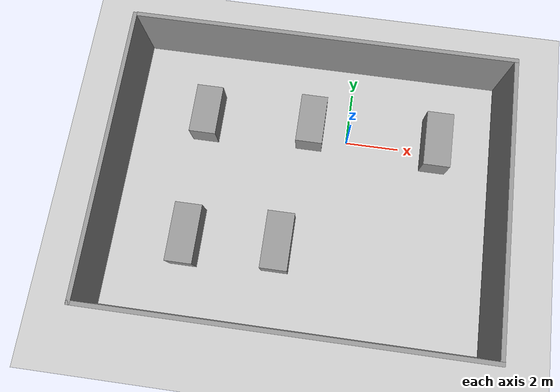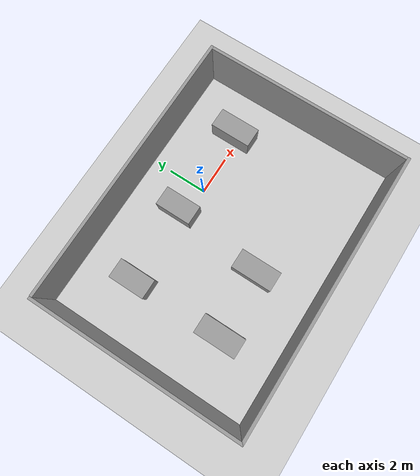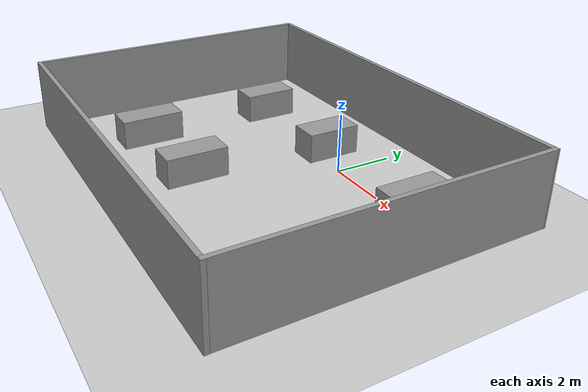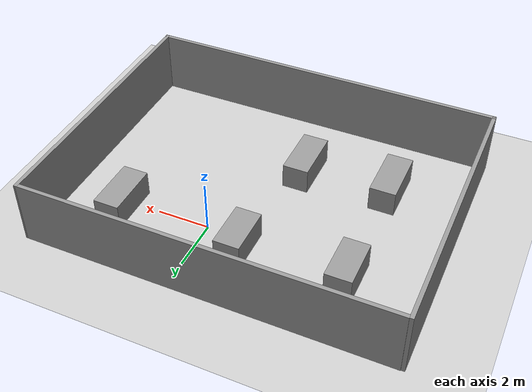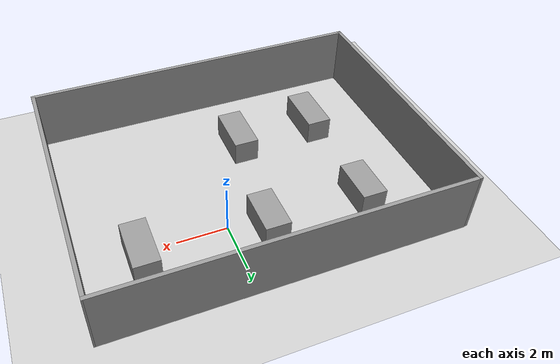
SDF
<sdf version="1.7">
 <world name="default">
  <light name="sun" type="directional">
   <pose>0 0 10 0 -0 0</pose>
   <diffuse>0.8 0.8 0.8 1</diffuse>
   <specular>0.2 0.2 0.2 1</specular>
   <attenuation>
    <range>1000</range>
    <constant>0.9</constant>
    <linear>0.01</linear>
    <quadratic>0.001</quadratic>
   </attenuation>
   <direction>-0.5 0.1 -0.9</direction>
   <spot><inner_angle>0</inner_angle><outer_angle>0</outer_angle><falloff>0</falloff></spot>
  </light>
  <model name="ground_plane">
   <static>1</static>
   <link name="link">
    <collision name="collision">
     <geometry><plane><normal>0 0 1</normal><size>100 100</size></plane></geometry>
     <surface>
      <contact><collide_bitmask>65535</collide_bitmask></contact>
      <friction><ode><mu>100</mu><mu2>50</mu2></ode></friction>
     </surface>
    </collision>
    <visual name="visual">
     <cast_shadows>0</cast_shadows>
     <geometry><plane><normal>0 0 1</normal><size>100 100</size></plane></geometry>
     <material>
      <script><uri>file://media/materials/scripts/gazebo.material</uri><name>Gazebo/Grey</name></script>
     </material>
    </visual>
   </link>
  </model>
  <gravity>0 0 -9.8</gravity>
  <magnetic_field>6e-06 2.3e-05 -4.2e-05</magnetic_field>
  <atmosphere type="adiabatic"/>
  <physics type="ode">
   <max_step_size>0.001</max_step_size>
   <real_time_factor>1</real_time_factor>
   <real_time_update_rate>1000</real_time_update_rate>
  </physics>
  <scene><ambient>0.4 0.4 0.4 1</ambient><background>0.7 0.7 0.7 1</background><shadows>1</shadows></scene>
  <audio><device>default</device></audio>
  <spherical_coordinates>
   <surface_model>EARTH_WGS84</surface_model>
   <latitude_deg>0</latitude_deg>
   <longitude_deg>0</longitude_deg>
   <elevation>0</elevation>
   <heading_deg>0</heading_deg>
  </spherical_coordinates>
  <model name="test">
   <pose>-1.36538 -2.17316 0 0 -0 0</pose>
   <link name="Wall_10">
    <collision name="Wall_10_Collision">
     <geometry><box><size>14.1406 0.15 2.5</size></box></geometry>
     <pose>0 0 1.25 0 -0 0</pose>
    </collision>
    <visual name="Wall_10_Visual">
     <pose>0 0 1.25 0 -0 0</pose>
     <geometry><box><size>14.1406 0.15 2.5</size></box></geometry>
     <material>
      <script><uri>file://media/materials/scripts/gazebo.material</uri><name>Gazebo/Grey</name></script>
      <ambient>1 1 1 1</ambient>
     </material>
     <meta><layer>0</layer></meta>
    </visual>
    <pose>0.013841 -5.25138 0 0 -0 3.14159</pose>
   </link>
   <link name="Wall_11">
    <collision name="Wall_11_Collision">
     <geometry><box><size>10.6151 0.15 2.5</size></box></geometry>
     <pose>0 0 1.25 0 -0 0</pose>
    </collision>
    <visual name="Wall_11_Visual">
     <pose>0 0 1.25 0 -0 0</pose>
     <geometry><box><size>10.6151 0.15 2.5</size></box></geometry>
     <material>
      <script><uri>file://media/materials/scripts/gazebo.material</uri><name>Gazebo/Grey</name></script>
      <ambient>1 1 1 1</ambient>
     </material>
     <meta><layer>0</layer></meta>
    </visual>
    <pose>-6.99956 -0.001428 0 0 -0 1.5726</pose>
   </link>
   <link name="Wall_8">
    <collision name="Wall_8_Collision">
     <geometry><box><size>14 0.15 2.5</size></box></geometry>
     <pose>0 0 1.25 0 -0 0</pose>
    </collision>
    <visual name="Wall_8_Visual">
     <pose>0 0 1.25 0 -0 0</pose>
     <geometry><box><size>14 0.15 2.5</size></box></geometry>
     <material>
      <script><uri>file://media/materials/scripts/gazebo.material</uri><name>Gazebo/Grey</name></script>
      <ambient>1 1 1 1</ambient>
     </material>
     <meta><layer>0</layer></meta>
    </visual>
    <pose>0.056573 5.25124 0 0 -0 0</pose>
   </link>
   <link name="Wall_9">
    <collision name="Wall_9_Collision">
     <geometry><box><size>10.6352 0.15 2.5</size></box></geometry>
     <pose>0 0 1.25 0 -0 0</pose>
    </collision>
    <visual name="Wall_9_Visual">
     <pose>0 0 1.25 0 -0 0</pose>
     <geometry><box><size>10.6352 0.15 2.5</size></box></geometry>
     <material>
      <script><uri>file://media/materials/scripts/gazebo.material</uri><name>Gazebo/Grey</name></script>
      <ambient>1 1 1 1</ambient>
     </material>
     <meta><layer>0</layer></meta>
    </visual>
    <pose>6.991 0.008628 0 0 -0 -1.569</pose>
   </link>
   <static>1</static>
  </model>
  <model name="unit_box">
   <pose>-5.47431 0.305988 0.5 0 -0 0</pose>
   <link name="link">
    <inertial>
     <mass>1</mass>
     <inertia>
      <ixx>0.166667</ixx>
      <ixy>0</ixy>
      <ixz>0</ixz>
      <iyy>0.166667</iyy>
      <iyz>0</iyz>
      <izz>0.166667</izz>
     </inertia>
    </inertial>
    <collision name="collision"><geometry><box><size>1 1.88535 1</size></box></geometry></collision>
    <visual name="visual">
     <geometry><box><size>1 1.88535 1</size></box></geometry>
     <material>
      <script><name>Gazebo/Grey</name><uri>file://media/materials/scripts/gazebo.material</uri></script>
     </material>
    </visual>
   </link>
  </model>
  <model name="unit_box_0">
   <pose>-5.45208 -4.47321 0.499975 2.3e-05 -0 0</pose>
   <link name="link">
    <inertial>
     <mass>1</mass>
     <inertia>
      <ixx>0.166667</ixx>
      <ixy>0</ixy>
      <ixz>0</ixz>
      <iyy>0.166667</iyy>
      <iyz>0</iyz>
      <izz>0.166667</izz>
     </inertia>
    </inertial>
    <collision name="collision"><geometry><box><size>1 2.16146 1</size></box></geometry></collision>
    <visual name="visual">
     <geometry><box><size>1 2.16146 1</size></box></geometry>
     <material>
      <script><name>Gazebo/Grey</name><uri>file://media/materials/scripts/gazebo.material</uri></script>
     </material>
    </visual>
   </link>
  </model>
  <model name="unit_box_1">
   <pose>-1.45155 0.46024 0.499992 -9e-06 -0 -0</pose>
   <link name="link">
    <inertial>
     <mass>1</mass>
     <inertia>
      <ixx>0.166667</ixx>
      <ixy>0</ixy>
      <ixz>0</ixz>
      <iyy>0.166667</iyy>
      <iyz>0</iyz>
      <izz>0.166667</izz>
     </inertia>
    </inertial>
    <collision name="collision"><geometry><box><size>1 1.8673 1</size></box></geometry></collision>
    <visual name="visual">
     <geometry><box><size>1 1.8673 1</size></box></geometry>
     <material>
      <script><name>Gazebo/Grey</name><uri>file://media/materials/scripts/gazebo.material</uri></script>
     </material>
    </visual>
   </link>
  </model>
  <model name="unit_box_2">
   <pose>3.37179 0.301244 0.499979 2e-05 -0 0</pose>
   <link name="link">
    <inertial>
     <mass>1</mass>
     <inertia>
      <ixx>0.166667</ixx>
      <ixy>0</ixy>
      <ixz>0</ixz>
      <iyy>0.166667</iyy>
      <iyz>0</iyz>
      <izz>0.166667</izz>
     </inertia>
    </inertial>
    <collision name="collision"><geometry><box><size>1 2.10204 1</size></box></geometry></collision>
    <visual name="visual">
     <geometry><box><size>1 2.10204 1</size></box></geometry>
     <material>
      <script><name>Gazebo/Grey</name><uri>file://media/materials/scripts/gazebo.material</uri></script>
     </material>
    </visual>
   </link>
  </model>
  <model name="unit_box_3">
   <pose>-2.06393 -4.2995 0.5 0 -0 0</pose>
   <link name="link">
    <inertial>
     <mass>1</mass>
     <inertia>
      <ixx>0.166667</ixx>
      <ixy>0</ixy>
      <ixz>0</ixz>
      <iyy>0.166667</iyy>
      <iyz>0</iyz>
      <izz>0.166667</izz>
     </inertia>
    </inertial>
    <collision name="collision"><geometry><box><size>1 2.10452 1</size></box></geometry></collision>
    <visual name="visual">
     <geometry><box><size>1 2.10452 1</size></box></geometry>
     <material>
      <script><name>Gazebo/Grey</name><uri>file://media/materials/scripts/gazebo.material</uri></script>
     </material>
    </visual>
   </link>
  </model>
 </world>
</sdf>
